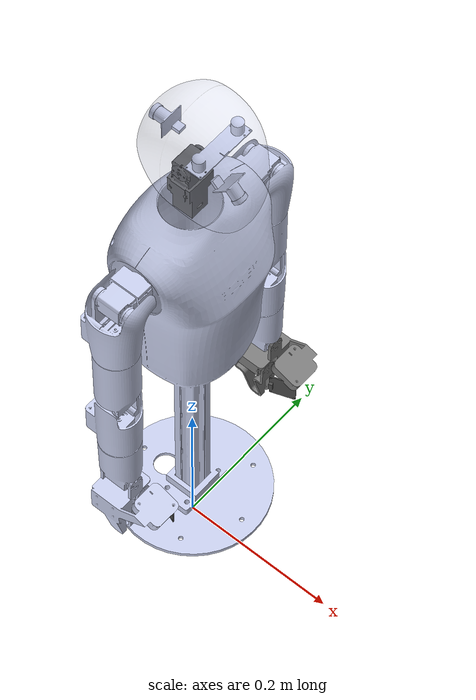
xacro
<?xml version="1.0"?>
<robot xmlns:xacro="http://www.ros.org/wiki/xacro" name="pkg_robot_model">

  <xacro:arg name="use_sim" default="true" />
  <xacro:arg name="use_mock" default="false" />
  <xacro:arg name="use_isaac" default="false" />

  <link name="world"/>
  <joint name="fixed_base" type="fixed">
    <parent link="world"/>
    <child link="base_link_0"/>
    <origin xyz="0 0 0.05" rpy="0 0 0"/>
  </joint>

  <link
    name="base_link_0">
    <inertial>
      <origin
        xyz="0.00141765149358512 -1.96082916842366E-06 0.217608830062732"
        rpy="0 0 0" />
      <mass
        value="0.938331552681975" />
      <inertia
        ixx="0.00422749400540776"
        ixy="2.23655888025461E-07"
        ixz="2.84472327474012E-05"
        iyy="0.00332849938405236"
        iyz="4.05990940126089E-08"
        izz="0.00307387768845531" />
    </inertial>
    <visual>
      <origin
        xyz="0 0 0"
        rpy="0 0 0" />
      <geometry>
        <mesh
          filename="package://pkg_robot_model/meshes/base_link_0.STL" />
      </geometry>
      <material
        name="">
        <color
          rgba="0.792156862745098 0.819607843137255 0.933333333333333 1" />
      </material>
    </visual>
    <collision>
      <origin
        xyz="0 0 0"
        rpy="0 0 0" />
      <geometry>
        <mesh
          filename="package://pkg_robot_model/meshes/base_link_0.STL" />
      </geometry>
    </collision>
  </link>
  <link
    name="head_101">
    <inertial>
      <origin
        xyz="0.000801011518323777 0.000149697183051665 0.0450261374123072"
        rpy="0 0 0" />
      <mass
        value="0.044450218923269" />
      <inertia
        ixx="7.96247134061428E-06"
        ixy="3.42750726491015E-10"
        ixz="-5.02362067166723E-08"
        iyy="8.11690279713338E-06"
        iyz="-5.44192291033308E-09"
        izz="7.25242564347539E-06" />
    </inertial>
    <visual>
      <origin
        xyz="0 0 0"
        rpy="0 0 0" />
      <geometry>
        <mesh
          filename="package://pkg_robot_model/meshes/head_101.STL" />
      </geometry>
      <material
        name="">
        <color
          rgba="0.298039215686275 0.298039215686275 0.298039215686275 1" />
      </material>
    </visual>
    <collision>
      <origin
        xyz="0 0 0"
        rpy="0 0 0" />
      <geometry>
        <mesh
          filename="package://pkg_robot_model/meshes/head_101.STL" />
      </geometry>
    </collision>
  </link>
  <joint
    name="j_101"
    type="continuous">
    <origin
      xyz="0 0 0.566134325856229"
      rpy="0 0 1.5707963267949" />
    <parent
      link="base_link_0" />
    <child
      link="head_101" />
    <axis
      xyz="0 0 -1" />
    <limit
      lower="-3.14"
      upper="0"
      effort="0"
      velocity="0" />
    <dynamics
      damping="0.1"
      friction="1" />
    <safety_controller
      soft_upper_limit="3.14"
      soft_lower_limit="-3.14"
      k_position="1"
      k_velocity="0" />
  </joint>
  <link
    name="head_102">
    <inertial>
      <origin
        xyz="0.0182286485833683 -0.0456530098633412 -0.0170737991528935"
        rpy="0 0 0" />
      <mass
        value="0.215705782038991" />
      <inertia
        ixx="0.000515464675439757"
        ixy="-5.7345629565846E-05"
        ixz="-8.65855578140041E-08"
        iyy="0.000353709823414566"
        iyz="-6.70440830782346E-08"
        izz="0.000403447743861996" />
    </inertial>
    <visual>
      <origin
        xyz="0 0 0"
        rpy="0 0 0" />
      <geometry>
        <mesh
          filename="package://pkg_robot_model/meshes/head_102.STL" />
      </geometry>
      <material
        name="">
        <color
          rgba="0.792156862745098 0.819607843137255 0.933333333333333 0.3" />
      </material>
    </visual>
    <collision>
      <origin
        xyz="0 0 0"
        rpy="0 0 0" />
      <geometry>
        <mesh
          filename="package://pkg_robot_model/meshes/head_102.STL" />
      </geometry>
    </collision>
  </link>
  <joint
    name="j_102"
    type="continuous">
    <origin
      xyz="0.0180499999646821 0 0.0764439288771096"
      rpy="-1.5707963267949 0 -1.57073409423468" />
    <parent
      link="head_101" />
    <child
      link="head_102" />
    <axis
      xyz="0 0 -1" />
    <limit
      lower="0"
      upper="0"
      effort="0"
      velocity="0" />
    <dynamics
      damping="0.1"
      friction="1" />
    <safety_controller
      soft_upper_limit="3.14"
      soft_lower_limit="-3.14"
      k_position="1"
      k_velocity="0" />
  </joint>
  <link
    name="camera_head_A1">
    <inertial>
      <origin
        xyz="0.00011060815428543 8.11711808879068E-13 0.00635284151178889"
        rpy="0 0 0" />
      <mass
        value="0.00794697285818674" />
      <inertia
        ixx="6.26830617601831E-06"
        ixy="-1.31787609688484E-13"
        ixz="2.98117768886353E-09"
        iyy="4.3305704407567E-07"
        iyz="-9.61194071305142E-17"
        izz="6.19900245109296E-06" />
    </inertial>
    <visual>
      <origin
        xyz="0 0 0"
        rpy="0 0 0" />
      <geometry>
        <mesh
          filename="package://pkg_robot_model/meshes/camera_head_A1.STL" />
      </geometry>
      <material
        name="">
        <color
          rgba="0.792156862745098 0.819607843137255 0.933333333333333 1" />
      </material>
    </visual>
    <collision>
      <origin
        xyz="0 0 0"
        rpy="0 0 0" />
      <geometry>
        <mesh
          filename="package://pkg_robot_model/meshes/camera_head_A1.STL" />
      </geometry>
    </collision>
  </link>

  <joint
    name="head_A1"
    type="fixed">
    <origin
      xyz="0.0372800018736784 -0.0560749999994781 -0.0170500000000003"
      rpy="1.570796327 0 0" />
    <parent
      link="head_102" />
    <child
      link="camera_head_A1" />
    <axis
      xyz="0 0 0" />
  </joint>

  <link
    name="camera_head_A2">
    <inertial>
      <origin
        xyz="0.000459671308999335 0.000851069116207359 -0.0105349526957084"
        rpy="0 0 0" />
      <mass
        value="0.00599221398366759" />
      <inertia
        ixx="6.19513674269176E-07"
        ixy="-2.51971483181754E-08"
        ixz="4.12204571582019E-08"
        iyy="6.06973321687977E-07"
        iyz="7.63178217500695E-08"
        izz="3.08952075111692E-07" />
    </inertial>
    <visual>
      <origin
        xyz="0 0 0"
        rpy="0 0 0" />
      <geometry>
        <mesh
          filename="package://pkg_robot_model/meshes/camera_head_A2.STL" />
      </geometry>
      <material
        name="">
        <color
          rgba="0.792156862745098 0.819607843137255 0.933333333333333 1" />
      </material>
    </visual>
    <collision>
      <origin
        xyz="0 0 0"
        rpy="0 0 0" />
      <geometry>
        <mesh
          filename="package://pkg_robot_model/meshes/camera_head_A2.STL" />
      </geometry>
    </collision>
  </link>
  <joint
    name="head_A2"
    type="fixed">
    <origin
      xyz="0.0656426813060928 0.00189427763838745 -0.0170499999999994"
      rpy="1.57079632679524 1.57070831666532 2.35619449019267" />
    <parent
      link="head_102" />
    <child
      link="camera_head_A2" />
    <axis
      xyz="0 0 0" />
  </joint>
  <link
    name="camera_head_B1">
    <inertial>
      <origin
        xyz="-0.00085110609953265 0.000459596534967702 -0.0105349558659972"
        rpy="0 0 0" />
      <mass
        value="0.0059922122876429" />
      <inertia
        ixx="6.06968650813984E-07"
        ixy="2.51960538023926E-08"
        ixz="-7.63216453633222E-08"
        iyy="6.1951786663113E-07"
        iyz="4.1213731512199E-08"
        izz="3.08952048939043E-07" />
    </inertial>
    <visual>
      <origin
        xyz="0 0 0"
        rpy="0 0 0" />
      <geometry>
        <mesh
          filename="package://pkg_robot_model/meshes/camera_head_B1.STL" />
      </geometry>
      <material
        name="">
        <color
          rgba="0.792156862745098 0.819607843137255 0.933333333333333 1" />
      </material>
    </visual>
    <collision>
      <origin
        xyz="0 0 0"
        rpy="0 0 0" />
      <geometry>
        <mesh
          filename="package://pkg_robot_model/meshes/camera_head_B1.STL" />
      </geometry>
    </collision>
  </link>
  <joint
    name="head_B1"
    type="fixed">
    <origin
      xyz="-0.0456499981263056 -0.0486060710969249 -0.0170500000000018"
      rpy="1.5707963267949 0 -1.5707963267949" />
    <parent
      link="head_102" />
    <child
      link="camera_head_B1" />
    <axis
      xyz="0 0 0" />
  </joint>

  <link
    name="R51">
    <inertial>
      <origin
        xyz="-0.000214135858885189 0.000123698847764043 0.0213854928726546"
        rpy="0 0 0" />
      <mass
        value="0.0312122452314472" />
      <inertia
        ixx="5.41516657745151E-06"
        ixy="3.52835975460584E-10"
        ixz="5.77053127053373E-09"
        iyy="5.28994848344407E-06"
        iyz="-1.67710081216987E-08"
        izz="4.64530189672221E-06" />
    </inertial>
    <visual>
      <origin
        xyz="0 0 0"
        rpy="0 0 0" />
      <geometry>
        <mesh
          filename="package://pkg_robot_model/meshes/R51.STL" />
      </geometry>
      <material
        name="">
        <color
          rgba="0.792156862745098 0.819607843137255 0.933333333333333 1" />
      </material>
    </visual>
    <collision>
      <origin
        xyz="0 0 0"
        rpy="0 0 0" />
      <geometry>
        <mesh
          filename="package://pkg_robot_model/meshes/R51.STL" />
      </geometry>
    </collision>
  </link>
  <joint
    name="j_51"
    type="continuous">
    <origin
      xyz="0 -0.0790406171338019 0.517029235393855"
      rpy="1.5707963267949 -1.5707963267949 0" />
    <parent
      link="base_link_0" />
    <child
      link="R51" />
    <axis
      xyz="0 0 1" />
    <dynamics
      damping="0.1"
      friction="1" />
    <safety_controller
      soft_upper_limit="3.14"
      soft_lower_limit="-3.14"
      k_position="1"
      k_velocity="0" />
    <limit
      effort="50"
      velocity="3.14" />
  </joint>
  <link
    name="R52">
    <inertial>
      <origin
        xyz="-0.000233367930581815 0.0464927139277024 -0.0215216949193344"
        rpy="0 0 0" />
      <mass
        value="0.079351949641" />
      <inertia
        ixx="5.07772224073006E-05"
        ixy="-1.13122812754977E-06"
        ixz="-2.28596671235747E-08"
        iyy="3.23715187315262E-05"
        iyz="2.1691293832916E-06"
        izz="5.08364815883239E-05" />
    </inertial>
    <visual>
      <origin
        xyz="0 0 0"
        rpy="0 0 0" />
      <geometry>
        <mesh
          filename="package://pkg_robot_model/meshes/R52.STL" />
      </geometry>
      <material
        name="">
        <color
          rgba="0.792156862745098 0.819607843137255 0.933333333333333 1" />
      </material>
    </visual>
    <collision>
      <origin
        xyz="0 0 0"
        rpy="0 0 0" />
      <geometry>
        <mesh
          filename="package://pkg_robot_model/meshes/R52.STL" />
      </geometry>
    </collision>
  </link>
  <joint
    name="j_52"
    type="continuous">
    <origin
      xyz="0 -0.017 0.041959"
      rpy="1.5708 -1.5708 0" />
    <parent
      link="R51" />
    <child
      link="R52" />
    <axis
      xyz="0 0 1" />
    <dynamics
      damping="0.1"
      friction="1" />
    <safety_controller
      soft_upper_limit="3.14"
      soft_lower_limit="-3.14"
      k_position="1"
      k_velocity="0" />
    <limit
      effort="50"
      velocity="3.14" />
  </joint>
  <link
    name="R53">
    <inertial>
      <origin
        xyz="-0.000119963447032502 -9.50409728730592E-06 0.0565988904283151"
        rpy="0 0 0" />
      <mass
        value="0.069532855887939" />
      <inertia
        ixx="4.27727296325855E-05"
        ixy="1.65112458461453E-09"
        ixz="2.36533864358167E-07"
        iyy="3.67098699433813E-05"
        iyz="5.6718473180663E-09"
        izz="1.59347535087201E-05" />
    </inertial>
    <visual>
      <origin
        xyz="0 0 0"
        rpy="0 0 0" />
      <geometry>
        <mesh
          filename="package://pkg_robot_model/meshes/R53.STL" />
      </geometry>
      <material
        name="">
        <color
          rgba="0.792156862745098 0.819607843137255 0.933333333333333 1" />
      </material>
    </visual>
    <collision>
      <origin
        xyz="0 0 0"
        rpy="0 0 0" />
      <geometry>
        <mesh
          filename="package://pkg_robot_model/meshes/R53.STL" />
      </geometry>
    </collision>
  </link>
  <joint
    name="j_53"
    type="continuous">
    <origin
      xyz="0 0.079472 -0.016913"
      rpy="-1.5708 0 -3.6742E-05" />
    <parent
      link="R52" />
    <child
      link="R53" />
    <axis
      xyz="0 0 1" />
    <dynamics
      damping="0.1"
      friction="1" />
    <safety_controller
      soft_upper_limit="3.14"
      soft_lower_limit="-3.14"
      k_position="1"
      k_velocity="0" />
    <limit
      effort="50"
      velocity="3.14" />
  </joint>
  <link
    name="R54">
    <inertial>
      <origin
        xyz="0.00726403891794954 0.0453873485931559 -0.0169916657575229"
        rpy="0 0 0" />
      <mass
        value="0.0657054898675531" />
      <inertia
        ixx="3.5743047135082E-05"
        ixy="-2.25223707241793E-06"
        ixz="-1.88244883567248E-08"
        iyy="2.85236475739634E-05"
        iyz="-1.89092200298606E-08"
        izz="3.54724622178133E-05" />
    </inertial>
    <visual>
      <origin
        xyz="0 0 0"
        rpy="0 0 0" />
      <geometry>
        <mesh
          filename="package://pkg_robot_model/meshes/R54.STL" />
      </geometry>
      <material
        name="">
        <color
          rgba="0.792156862745098 0.819607843137255 0.933333333333333 1" />
      </material>
    </visual>
    <collision>
      <origin
        xyz="0 0 0"
        rpy="0 0 0" />
      <geometry>
        <mesh
          filename="package://pkg_robot_model/meshes/R54.STL" />
      </geometry>
    </collision>
  </link>
  <joint
    name="j_54"
    type="continuous">
    <origin
      xyz="0.0170495940075351 8.67046779537791E-05 0.103096906938387"
      rpy="1.57075958479638 0 1.57079632679489" />
    <parent
      link="R53" />
    <child
      link="R54" />
    <axis
      xyz="0 -3.6742E-05 1" />
    <dynamics
      damping="0.1"
      friction="1" />
    <safety_controller
      soft_upper_limit="3.14"
      soft_lower_limit="-3.14"
      k_position="1"
      k_velocity="0" />
    <limit
      effort="50"
      velocity="3.14" />
  </joint>
  <link
    name="R55">
    <inertial>
      <origin
        xyz="0.000112569565069692 0.000114501684141564 0.0413081847030029"
        rpy="0 0 0" />
      <mass
        value="0.0577443642673399" />
      <inertia
        ixx="1.68217713051815E-05"
        ixy="4.53553905325558E-10"
        ixz="-6.49385359894605E-09"
        iyy="2.10048639618397E-05"
        iyz="-2.95907428717452E-08"
        izz="1.18563926617084E-05" />
    </inertial>
    <visual>
      <origin
        xyz="0 0 0"
        rpy="0 0 0" />
      <geometry>
        <mesh
          filename="package://pkg_robot_model/meshes/R55.STL" />
      </geometry>
      <material
        name="">
        <color
          rgba="0.792156862745098 0.819607843137255 0.933333333333333 1" />
      </material>
    </visual>
    <collision>
      <origin
        xyz="0 0 0"
        rpy="0 0 0" />
      <geometry>
        <mesh
          filename="package://pkg_robot_model/meshes/R55.STL" />
      </geometry>
    </collision>
  </link>
  <joint
    name="j_55"
    type="continuous">
    <origin
      xyz="0 0.074405 -0.017047"
      rpy="0 -1.5708 -1.5708" />
    <parent
      link="R54" />
    <child
      link="R55" />
    <axis
      xyz="0 0 1" />
    <dynamics
      damping="0.1"
      friction="1" />
    <safety_controller
      soft_upper_limit="3.14"
      soft_lower_limit="-3.14"
      k_position="1"
      k_velocity="0" />
    <limit
      effort="50"
      velocity="3.14" />
  </joint>
  <link
    name="R56">
    <inertial>
      <origin
        xyz="-0.00685577673934879 0.035725836838622 -0.0289080060531731"
        rpy="0 0 0" />
      <mass
        value="0.0687189267592545" />
      <inertia
        ixx="3.91082250280169E-05"
        ixy="4.58505371254852E-06"
        ixz="2.75657348374613E-06"
        iyy="2.41014550802785E-05"
        iyz="-2.42074283407769E-06"
        izz="3.51239530362555E-05" />
    </inertial>
    <visual>
      <origin
        xyz="0 0 0"
        rpy="0 0 0" />
      <geometry>
        <mesh
          filename="package://pkg_robot_model/meshes/R56.STL" />
      </geometry>
      <material
        name="">
        <color
          rgba="0.792156862745098 0.819607843137255 0.933333333333333 1" />
      </material>
    </visual>
    <collision>
      <origin
        xyz="0 0 0"
        rpy="0 0 0" />
      <geometry>
        <mesh
          filename="package://pkg_robot_model/meshes/R56.STL" />
      </geometry>
      <surface>
          <friction>
            <ode>
              <mu>2.0</mu>
              <mu2>2.0</mu2>
            </ode>
          </friction>
          <contact>
            <ode>
              <kp>1000000.0</kp>
              <kd>1.0</kd>
              <min_depth>0.001</min_depth>
            </ode>
          </contact>
      </surface>
    </collision>
  </link>
  <joint
    name="j_56"
    type="continuous">
    <origin
      xyz="0 0.01705 0.077444"
      rpy="1.5708 3.6742E-05 -3.1416" />
    <parent
      link="R55" />
    <child
      link="R56" />
    <axis
      xyz="0 0 1" />
    <dynamics
      damping="0.1"
      friction="1" />
    <safety_controller
      soft_upper_limit="3.14"
      soft_lower_limit="-3.14"
      k_position="1"
      k_velocity="0" />
    <limit
      effort="50"
      velocity="3.14" />
  </joint>
  <link
    name="R57">
    <inertial>
      <origin
        xyz="-0.00157321911233499 0.0289359034083855 -0.0180500053634029"
        rpy="0 0 0" />
      <mass
        value="0.00867895893394143" />
      <inertia
        ixx="6.00860790308426E-06"
        ixy="3.92221514763387E-07"
        ixz="-8.22808430341328E-13"
        iyy="2.00081084209462E-06"
        iyz="-9.53432366009719E-12"
        izz="4.52461612804236E-06" />
    </inertial>
    <visual>
      <origin
        xyz="0 0 0"
        rpy="0 0 0" />
      <geometry>
        <mesh
          filename="package://pkg_robot_model/meshes/R57.STL" />
      </geometry>
      <material
        name="">
        <color
          rgba="0.792156862745098 0.819607843137255 0.933333333333333 1" />
      </material>
    </visual>
    <collision>
      <origin
        xyz="0 0 0"
        rpy="0 0 0" />
      <geometry>
        <mesh
          filename="package://pkg_robot_model/meshes/R57.STL" />
      </geometry>
      <surface>
          <friction>
            <ode>
              <mu>2.0</mu>
              <mu2>2.0</mu2>
            </ode>
          </friction>
          <contact>
            <ode>
              <kp>1000000.0</kp>
              <kd>1.0</kd>
              <min_depth>0.001</min_depth>
            </ode>
          </contact>
      </surface>
    </collision>
  </link>
  <joint
    name="j_57"
    type="revolute">
    <origin
      xyz="0.0124935996479524 0.0370754693305437 0.000999990034185268"
      rpy="0 0 0" />
    <parent
      link="R56" />
    <child
      link="R57" />
    <axis
      xyz="0 0 -1" />
    <limit
      lower="-0.05"
      upper="1.05"
      effort="50"
      velocity="1.0" />
    <dynamics
      damping="0.1"
      friction="1" />
    <safety_controller
      soft_upper_limit="3.14"
      soft_lower_limit="-3.14"
      k_position="1"
      k_velocity="0" />
  </joint>

  <link
    name="camera_Hand_R1">
    <inertial>
      <origin
        xyz="5.00113413529069E-09 -0.000397973186382655 -0.0100723494831189"
        rpy="0 0 0" />
      <mass
        value="0.00599127370958526" />
      <inertia
        ixx="8.96595010774009E-07"
        ixy="3.7821554840438E-13"
        ixz="4.02334946914611E-13"
        iyy="8.6649789026362E-07"
        iyz="-3.20164436420297E-08"
        izz="3.94164788894851E-07" />
    </inertial>
    <visual>
      <origin
        xyz="0 0 0"
        rpy="0 0 0" />
      <geometry>
        <mesh
          filename="package://pkg_robot_model/meshes/camera_Hand_R1.STL" />
      </geometry>
      <material
        name="">
        <color
          rgba="0.298039215686275 0.298039215686275 0.298039215686275 1" />
      </material>
    </visual>
    <collision>
      <origin
        xyz="0 0 0"
        rpy="0 0 0" />
      <geometry>
        <mesh
          filename="package://pkg_robot_model/meshes/camera_Hand_R1.STL" />
      </geometry>
    </collision>
  </link>
  <joint
    name="Hand_R1"
    type="fixed">
    <origin
      xyz="4.80563576571967E-05 -0.0420629714422308 0.11697530609676"
      rpy="-2.7925268032163 -1.570796327 1.18086507071989E-05" />
    <parent
      link="R55" />
    <child
      link="camera_Hand_R1" />
    <axis
      xyz="0 0 0" />
  </joint>

  <link
    name="L1">
    <inertial>
      <origin
        xyz="-0.000192642868019122 0.000180157456708213 -0.0204071780689106"
        rpy="0 0 0" />
      <mass
        value="0.0347024083126201" />
      <inertia
        ixx="6.19721616763801E-06"
        ixy="3.55279545681144E-10"
        ixz="-5.77173316618116E-09"
        iyy="5.86612497951025E-06"
        iyz="2.02396550195964E-08"
        izz="5.64519144431111E-06" />
    </inertial>
    <visual>
      <origin
        xyz="0 0 0"
        rpy="0 0 0" />
      <geometry>
        <mesh
          filename="package://pkg_robot_model/meshes/L1.STL" />
      </geometry>
      <material
        name="">
        <color
          rgba="0.792156862745098 0.819607843137255 0.933333333333333 1" />
      </material>
    </visual>
    <collision>
      <origin
        xyz="0 0 0"
        rpy="0 0 0" />
      <geometry>
        <mesh
          filename="package://pkg_robot_model/meshes/L1.STL" />
      </geometry>
    </collision>
  </link>
  <joint
    name="j_1"
    type="continuous">
    <origin
      xyz="0 0.0790362279295954 0.517029235393855"
      rpy="1.5707963267949 -1.5707963267949 0" />
    <parent
      link="base_link_0" />
    <child
      link="L1" />
    <axis
      xyz="0 0 1" />
    <dynamics
      friction="1" />
    <safety_controller
      soft_upper_limit="3.14"
      soft_lower_limit="-3.14"
      k_position="1"
      k_velocity="1" />
    <limit
      effort="50"
      velocity="3.14" />
  </joint>
  <link
    name="L2">
    <inertial>
      <origin
        xyz="0.000210564433566485 0.0461358506504139 -0.0217456373631241"
        rpy="0 0 0" />
      <mass
        value="0.0872037088007755" />
      <inertia
        ixx="5.76364875744257E-05"
        ixy="1.12212114231819E-06"
        ixz="2.32882539579393E-08"
        iyy="3.63881691853813E-05"
        iyz="2.93767750820015E-06"
        izz="5.51203430946247E-05" />
    </inertial>
    <visual>
      <origin
        xyz="0 0 0"
        rpy="0 0 0" />
      <geometry>
        <mesh
          filename="package://pkg_robot_model/meshes/L2.STL" />
      </geometry>
      <material
        name="">
        <color
          rgba="0.792156862745098 0.819607843137255 0.933333333333333 1" />
      </material>
    </visual>
    <collision>
      <origin
        xyz="0 0 0"
        rpy="0 0 0" />
      <geometry>
        <mesh
          filename="package://pkg_robot_model/meshes/L2.STL" />
      </geometry>
    </collision>
  </link>
  <joint
    name="j_2"
    type="continuous">
    <origin
      xyz="0 -0.0169999868316996 -0.0419590594325319"
      rpy="1.5707963267949 -1.5707963267949 0" />
    <parent
      link="L1" />
    <child
      link="L2" />
    <axis
      xyz="0 0 -1" />
    <dynamics
      damping="0.1"
      friction="1" />
    <safety_controller
      soft_upper_limit="3.14"
      soft_lower_limit="-3.14"
      k_position="1"
      k_velocity="1" />
    <limit
      effort="50"
      velocity="3.14" />
  </joint>
  <link
    name="L3">
    <inertial>
      <origin
        xyz="0.000145645975762471 -7.9074410577075E-05 0.0543955372949051"
        rpy="0 0 0" />
      <mass
        value="0.0845177344918411" />
      <inertia
        ixx="5.45917931816826E-05"
        ixy="-1.7051714186862E-09"
        ixz="-3.05957221002369E-07"
        iyy="4.6878700564455E-05"
        iyz="5.67304149388123E-09"
        izz="2.03211611427177E-05" />
    </inertial>
    <visual>
      <origin
        xyz="0 0 0"
        rpy="0 0 0" />
      <geometry>
        <mesh
          filename="package://pkg_robot_model/meshes/L3.STL" />
      </geometry>
      <material
        name="">
        <color
          rgba="0.792156862745098 0.819607843137255 0.933333333333333 1" />
      </material>
    </visual>
    <collision>
      <origin
        xyz="0 0 0"
        rpy="0 0 0" />
      <geometry>
        <mesh
          filename="package://pkg_robot_model/meshes/L3.STL" />
      </geometry>
    </collision>
  </link>
  <joint
    name="j_3"
    type="continuous">
    <origin
      xyz="0 0.079471814959571 -0.0169999094912547"
      rpy="-1.5707963267949 0 3.6741998521265E-05" />
    <parent
      link="L2" />
    <child
      link="L3" />
    <axis
      xyz="0 0 -1" />
    <dynamics
      damping="0.1"
      friction="1" />
    <safety_controller
      soft_upper_limit="3.14"
      soft_lower_limit="-3.14"
      k_position="1"
      k_velocity="1" />
    <limit
      effort="50"
      velocity="3.14" />
  </joint>
  <link
    name="L4">
    <inertial>
      <origin
        xyz="-0.00670865470292906 0.04448451391237 -0.0170127116500939"
        rpy="0 0 0" />
      <mass
        value="0.0795436653182316" />
      <inertia
        ixx="4.60723258020471E-05"
        ixy="2.92578887692643E-06"
        ixz="2.62398643572018E-08"
        iyy="3.60699758039952E-05"
        iyz="-2.47459263312781E-08"
        izz="4.52717521427736E-05" />
    </inertial>
    <visual>
      <origin
        xyz="0 0 0"
        rpy="0 0 0" />
      <geometry>
        <mesh
          filename="package://pkg_robot_model/meshes/L4.STL" />
      </geometry>
      <material
        name="">
        <color
          rgba="0.792156862745098 0.819607843137255 0.933333333333333 1" />
      </material>
    </visual>
    <collision>
      <origin
        xyz="0 0 0"
        rpy="0 0 0" />
      <geometry>
        <mesh
          filename="package://pkg_robot_model/meshes/L4.STL" />
      </geometry>
    </collision>
  </link>
  <joint
    name="j_4"
    type="continuous">
    <origin
      xyz="-0.0170502891901611 0 0.103096906938387"
      rpy="1.57075958479638 0 -1.57079632679489" />
    <parent
      link="L3" />
    <child
      link="L4" />
    <axis
      xyz="0 3.67419985121779E-05 -0.999999999325013" />
    <dynamics
      damping="0.1"
      friction="1" />
    <safety_controller
      soft_upper_limit="3.14"
      soft_lower_limit="-3.14"
      k_position="1"
      k_velocity="1" />
    <limit
      effort="50"
      velocity="3.14" />
  </joint>
  <link
    name="L5">
    <inertial>
      <origin
        xyz="-9.25658013185282E-05 0.000102962993435074 0.0394964660101199"
        rpy="0 0 0" />
      <mass
        value="0.0691929280922426" />
      <inertia
        ixx="2.10253646250632E-05"
        ixy="-6.28653046836635E-10"
        ixz="6.55689674053424E-09"
        iyy="2.62960432926089E-05"
        iyz="-3.91546838069766E-08"
        izz="1.50196771560165E-05" />
    </inertial>
    <visual>
      <origin
        xyz="0 0 0"
        rpy="0 0 0" />
      <geometry>
        <mesh
          filename="package://pkg_robot_model/meshes/L5.STL" />
      </geometry>
      <material
        name="">
        <color
          rgba="0.792156862745098 0.819607843137255 0.933333333333333 1" />
      </material>
    </visual>
    <collision>
      <origin
        xyz="0 0 0"
        rpy="0 0 0" />
      <geometry>
        <mesh
          filename="package://pkg_robot_model/meshes/L5.STL" />
      </geometry>
    </collision>
  </link>
  <joint
    name="j_5"
    type="continuous">
    <origin
      xyz="0 0.0744046046225213 -0.0170472662379522"
      rpy="0 1.57075958479775 1.57079632669987" />
    <parent
      link="L4" />
    <child
      link="L5" />
    <axis
      xyz="0 0 -1" />
    <dynamics
      damping="0.1"
      friction="1" />
    <safety_controller
      soft_upper_limit="3.14"
      soft_lower_limit="-3.14"
      k_position="1"
      k_velocity="1" />
    <limit
      effort="50"
      velocity="3.14" />
  </joint>
  <link
    name="L6">
    <inertial>
      <origin
        xyz="0.00832756952190081 0.0348033722235037 -0.0293176557097364"
        rpy="0 0 0" />
      <mass
        value="0.0813734434579186" />
      <inertia
        ixx="5.22787104552577E-05"
        ixy="-6.15832884388635E-06"
        ixz="-3.77995700179428E-06"
        iyy="3.36126384498886E-05"
        iyz="-3.50326087384497E-06"
        izz="4.52948384503414E-05" />
    </inertial>
    <visual>
      <origin
        xyz="0 0 0"
        rpy="0 0 0" />
      <geometry>
        <mesh
          filename="package://pkg_robot_model/meshes/L6.STL" />
      </geometry>
      <material
        name="">
        <color
          rgba="0.498039215686275 0.498039215686275 0.498039215686275 1" />
      </material>
    </visual>
    <collision>
      <origin
        xyz="0 0 0"
        rpy="0 0 0" />
      <geometry>
        <mesh
          filename="package://pkg_robot_model/meshes/L6.STL" />
      </geometry>
      <surface>
          <friction>
            <ode>
              <mu>2.0</mu>
              <mu2>2.0</mu2>
            </ode>
          </friction>
          <contact>
            <ode>
              <kp>1000000.0</kp>
              <kd>1.0</kd>
              <min_depth>0.001</min_depth>
            </ode>
          </contact>
      </surface>
    </collision>
  </link>
  <joint
    name="j_6"
    type="continuous">
    <origin
      xyz="0 0.017050000000365 0.0774439288765981"
      rpy="1.57079632679491 -3.6741998521265E-05 -3.14159265358979" />
    <parent
      link="L5" />
    <child
      link="L6" />
    <axis
      xyz="0 0 1" />
    <dynamics
      damping="0.1"
      friction="1" />
    <safety_controller
      soft_upper_limit="3.14"
      soft_lower_limit="-3.14"
      k_position="1"
      k_velocity="1" />
    <limit
      effort="50"
      velocity="3.14" />
  </joint>
  <link
    name="L7">
    <inertial>
      <origin
        xyz="0.00157330967810734 0.0289366122334894 -0.0180497509383475"
        rpy="0 0 0" />
      <mass
        value="0.0112822819181765" />
      <inertia
        ixx="7.81114701670507E-06"
        ixy="-5.09876416911949E-07"
        ixz="2.00384410451794E-12"
        iyy="2.60102824368288E-06"
        iyz="1.74750406899908E-11"
        izz="5.88195923301209E-06" />
    </inertial>
    <visual>
      <origin
        xyz="0 0 0"
        rpy="0 0 0" />
      <geometry>
        <mesh
          filename="package://pkg_robot_model/meshes/L7.STL" />
      </geometry>
      <material
        name="">
        <color
          rgba="0.498039215686275 0.498039215686275 0.498039215686275 1" />
      </material>
    </visual>
    <collision>
      <origin
        xyz="0 0 0"
        rpy="0 0 0" />
      <geometry>
        <mesh
          filename="package://pkg_robot_model/meshes/L7.STL" />
      </geometry>
      <surface>
          <friction>
            <ode>
              <mu>2.0</mu>
              <mu2>2.0</mu2>
            </ode>
          </friction>
          <contact>
            <ode>
              <kp>1000000.0</kp>
              <kd>1.0</kd>
              <min_depth>0.001</min_depth>
            </ode>
          </contact>
      </surface>
    </collision>
  </link>
  <joint
    name="j_7"
    type="revolute">
    <origin
      xyz="-0.0124935928024225 0.0370754598649937 0.000999983705206001"
      rpy="0 0 0" />
    <parent
      link="L6" />
    <child
      link="L7" />
    <axis
      xyz="0 0 1" />
    <limit
      lower="-0.05"
      upper="1.05"
      effort="50"
      velocity="1.0" />
    <dynamics
      damping="0.1"
      friction="1" />
    <safety_controller
      soft_upper_limit="3.14"
      soft_lower_limit="-3.14"
      k_position="1"
      k_velocity="1" />
  </joint>

  <link
    name="camera_Hand_L1">
    <inertial>
      <origin
        xyz="2.66453525910038E-15 0.00039797318641413 -0.0100723494831189"
        rpy="0 0 0" />
      <mass
        value="0.00778865582246085" />
      <inertia
        ixx="1.16557351401239E-06"
        ixy="3.19860976650031E-20"
        ixz="2.50618950962356E-19"
        iyy="1.12644725733653E-06"
        iyz="4.16213767379257E-08"
        izz="5.12414225563308E-07" />
    </inertial>
    <visual>
      <origin
        xyz="0 0 0"
        rpy="0 0 0" />
      <geometry>
        <mesh
          filename="package://pkg_robot_model/meshes/camera_Hand_L1.STL" />
      </geometry>
      <material
        name="">
        <color
          rgba="0.298039215686275 0.298039215686275 0.298039215686275 1" />
      </material>
    </visual>
    <collision>
      <origin
        xyz="0 0 0"
        rpy="0 0 0" />
      <geometry>
        <mesh
          filename="package://pkg_robot_model/meshes/camera_Hand_L1.STL" />
      </geometry>
    </collision>
  </link>

  <joint
    name="Hand_L1"
    type="fixed">
    <origin
      xyz="4.80563576483739E-05 -0.04206297144223 0.11697530609676"
      rpy="-0.349065850398865 -1.570796327 0" />
    <parent
      link="L5" />
    <child
      link="camera_Hand_L1" />
    <axis
      xyz="0 0 0" />
  </joint>

  <ros2_control name="XiaobeiSystem" type="system">
    <hardware>
      <xacro:if value="$(arg use_sim)">
        <plugin>gazebo_ros2_control/GazeboSystem</plugin>
      </xacro:if>

      <xacro:unless value="$(arg use_sim)">
        <xacro:if value="$(arg use_isaac)">
          <plugin>joint_state_topic_hardware_interface/JointStateTopicSystem</plugin>
          <param name="joint_commands_topic">/isaac_joint_commands</param>
          <param name="joint_states_topic">/isaac_joint_states</param>
          <param name="sum_wrapped_joint_states">false</param>
        </xacro:if>
        <xacro:unless value="$(arg use_isaac)">
          <xacro:if value="$(arg use_mock)">
            <plugin>mock_components/GenericSystem</plugin>
          </xacro:if>
          <xacro:unless value="$(arg use_mock)">
            <plugin>xiaobei_hardware/XiaobeiHardwareInterface</plugin>
            <param name="serial_port">/dev/ttyACM0</param>
            <param name="baud_rate">1000000</param>
          </xacro:unless>
        </xacro:unless>
      </xacro:unless>
    </hardware>

    <joint name="j_101">
      <command_interface name="position"/>
      <state_interface name="position"/>
      <state_interface name="velocity"/>
    <state_interface name="effort"/>
    </joint>
    <joint name="j_102">
      <command_interface name="position"/>
      <state_interface name="position"/>
      <state_interface name="velocity"/>
    <state_interface name="effort"/>
    </joint>

    <joint name="j_51">
      <command_interface name="position"/>
      <state_interface name="position"/>
      <state_interface name="velocity"/>
    <state_interface name="effort"/>
    </joint>
    <joint name="j_52">
      <command_interface name="position"/>
      <state_interface name="position"/>
      <state_interface name="velocity"/>
    <state_interface name="effort"/>
    </joint>
    <joint name="j_53">
      <command_interface name="position"/>
      <state_interface name="position"/>
      <state_interface name="velocity"/>
    <state_interface name="effort"/>
    </joint>
    <joint name="j_54">
      <command_interface name="position"/>
      <state_interface name="position"/>
      <state_interface name="velocity"/>
    <state_interface name="effort"/>
    </joint>
    <joint name="j_55">
      <command_interface name="position"/>
      <state_interface name="position"/>
      <state_interface name="velocity"/>
    <state_interface name="effort"/>
    </joint>
    <joint name="j_56">
      <command_interface name="position"/>
      <state_interface name="position"/>
      <state_interface name="velocity"/>
    <state_interface name="effort"/>
    </joint>
    <joint name="j_57">
      <command_interface name="position"/>
      <state_interface name="position"/>
      <state_interface name="velocity"/>
    <state_interface name="effort"/>
    </joint>

    <joint name="j_1">
      <command_interface name="position"/>
      <state_interface name="position"/>
      <state_interface name="velocity"/>
    <state_interface name="effort"/>
    </joint>
    <joint name="j_2">
      <command_interface name="position"/>
      <state_interface name="position"/>
      <state_interface name="velocity"/>
    <state_interface name="effort"/>
    </joint>
    <joint name="j_3">
      <command_interface name="position"/>
      <state_interface name="position"/>
      <state_interface name="velocity"/>
    <state_interface name="effort"/>
    </joint>
    <joint name="j_4">
      <command_interface name="position"/>
      <state_interface name="position"/>
      <state_interface name="velocity"/>
    <state_interface name="effort"/>
    </joint>
    <joint name="j_5">
      <command_interface name="position"/>
      <state_interface name="position"/>
      <state_interface name="velocity"/>
    <state_interface name="effort"/>
    </joint>
    <joint name="j_6">
      <command_interface name="position"/>
      <state_interface name="position"/>
      <state_interface name="velocity"/>
    <state_interface name="effort"/>
    </joint>
    <joint name="j_7">
      <command_interface name="position"/>
      <state_interface name="position"/>
      <state_interface name="velocity"/>
    <state_interface name="effort"/>
    </joint>

  </ros2_control>

  <gazebo>
    <plugin filename="libgazebo_ros2_control.so" name="gazebo_ros2_control">
      <robot_param>robot_description</robot_param>
      <robot_param_node>robot_state_publisher</robot_param_node>
      <parameters>$(find pkg_robot_model)/config/my_controllers.yaml</parameters>
    </plugin>
  </gazebo>

  <gazebo reference="base_link_0"><material>Gazebo/Grey</material></gazebo>
  <gazebo reference="head_101"><material>Gazebo/DarkGrey</material></gazebo>
  <gazebo reference="head_102"><material>Gazebo/GreyTransparent</material></gazebo>

  <gazebo reference="R51"><material>Gazebo/Grey</material></gazebo>
  <gazebo reference="R52"><material>Gazebo/Grey</material></gazebo>
  <gazebo reference="R53"><material>Gazebo/Grey</material></gazebo>
  <gazebo reference="R54"><material>Gazebo/Grey</material></gazebo>
  <gazebo reference="R55"><material>Gazebo/Grey</material></gazebo>
  <gazebo reference="R56"><material>Gazebo/Grey</material></gazebo>
  <gazebo reference="R57"><material>Gazebo/Grey</material></gazebo>

  <gazebo reference="L1"><material>Gazebo/Grey</material></gazebo>
  <gazebo reference="L2"><material>Gazebo/Grey</material></gazebo>
  <gazebo reference="L3"><material>Gazebo/Grey</material></gazebo>
  <gazebo reference="L4"><material>Gazebo/Grey</material></gazebo>
  <gazebo reference="L5"><material>Gazebo/Grey</material></gazebo>
  <gazebo reference="L6"><material>Gazebo/Grey</material></gazebo>
  <gazebo reference="L7"><material>Gazebo/Grey</material></gazebo>

  <gazebo reference="camera_head_A1">
    <material>Gazebo/Black</material>
    <sensor name="head_camera" type="depth">
      <visualize>true</visualize>
      <update_rate>30.0</update_rate>
      <camera name="head_camera">
        <horizontal_fov>1.047198</horizontal_fov>
        <image>
          <width>640</width>
          <height>480</height>
          <format>R8G8B8</format>
        </image>
        <clip>
          <near>0.05</near>
          <far>100.0</far>
        </clip>
      </camera>
      <plugin name="head_camera_controller" filename="libgazebo_ros_camera.so">
        <frame_name>camera_head_A1</frame_name>
        <min_depth>0.1</min_depth>
        <max_depth>100.0</max_depth>
      </plugin>
    </sensor>
  </gazebo>

  <gazebo reference="camera_Hand_R1">
    <material>Gazebo/Black</material>
    <sensor name="right_hand_camera" type="camera">
      <visualize>true</visualize>
      <update_rate>30.0</update_rate>
      <camera name="right_hand_camera">
        <horizontal_fov>1.0</horizontal_fov>
        <image>
          <width>640</width>
          <height>480</height>
          <format>R8G8B8</format>
        </image>
        <clip>
          <near>0.02</near>
          <far>300</far>
        </clip>
      </camera>
      <plugin name="right_hand_camera_controller" filename="libgazebo_ros_camera.so">
        <frame_name>camera_Hand_R1</frame_name>
      </plugin>
    </sensor>
  </gazebo>

  <gazebo reference="camera_Hand_L1">
    <material>Gazebo/Black</material>
    <sensor name="left_hand_camera" type="camera">
      <visualize>true</visualize>
      <update_rate>30.0</update_rate>
      <camera name="left_hand_camera">
        <horizontal_fov>1.0</horizontal_fov>
        <image>
          <width>640</width>
          <height>480</height>
          <format>R8G8B8</format>
        </image>
        <clip>
          <near>0.02</near>
          <far>300</far>
        </clip>
      </camera>
      <plugin name="left_hand_camera_controller" filename="libgazebo_ros_camera.so">
        <frame_name>camera_Hand_L1</frame_name>
      </plugin>
    </sensor>
  </gazebo>

  <gazebo reference="camera_head_A2"><material>Gazebo/Black</material></gazebo>
  <gazebo reference="camera_head_B1"><material>Gazebo/Black</material></gazebo>

</robot>
